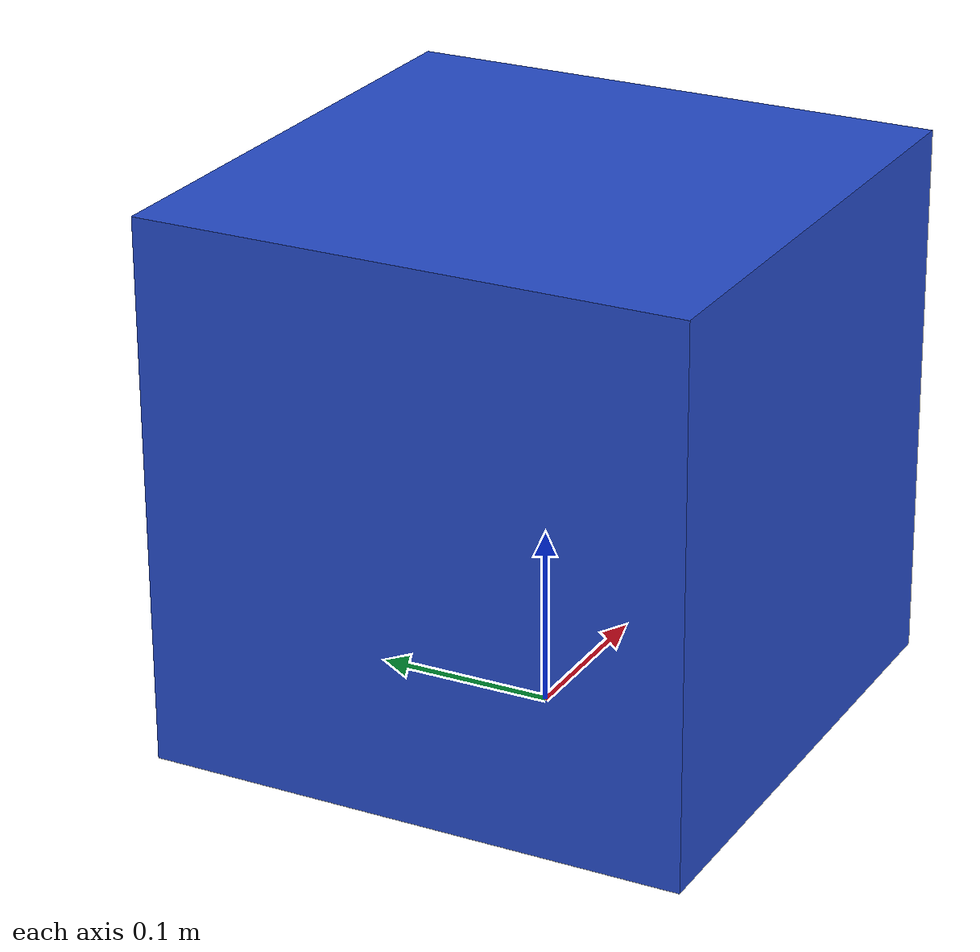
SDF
<?xml version='1.0'?>
<sdf version="1.6">
  <model name="simple_cube">
    <pose>0 0 0.1524 0 0 0</pose>

    <link name="link">
      <inertial>
        <mass>1.0</mass>
        <inertia>
          <ixx>0.166667</ixx>
          <ixy>0</ixy>
          <ixz>0</ixz>
          <iyy>0.166667</iyy>
          <iyz>0</iyz>
          <izz>0.166667</izz>
        </inertia>
      </inertial>

      <collision name="collision">
        <geometry>
          <box>
            <size>0.3048 0.3048 0.3048</size>
          </box>
        </geometry>
      </collision>

      <visual name="visual">
        <geometry>
          <box>
            <size>0.3048 0.3048 0.3048</size>
          </box>
        </geometry>
        <material>
          <script>
            <name>Gazebo/Blue</name>
            <uri>file://media/materials/scripts/gazebo.material</uri>
          </script>
        </material>
      </visual>
    </link>
  </model>
</sdf>
